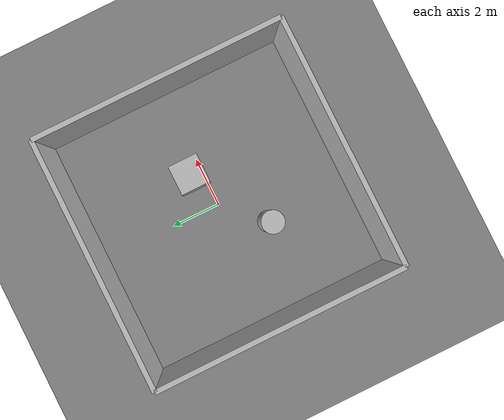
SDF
<?xml version="1.0" ?>
<sdf version="1.9">
  <world name="indoor_world">
    <gravity>0 0 -9.81</gravity>
    <physics name="1ms" type="gz::physics::dart::DART">
      <max_step_size>0.001</max_step_size>
      <real_time_factor>1.0</real_time_factor>
      <real_time_update_rate>1000</real_time_update_rate>
    </physics>
    <plugin filename="gz-sim-physics-system" name="gz::sim::systems::Physics"/>
    <plugin filename="gz-sim-user-commands-system" name="gz::sim::systems::UserCommands"/>
    <plugin filename="gz-sim-scene-broadcaster-system" name="gz::sim::systems::SceneBroadcaster"/>

    <light name="sun" type="directional">
      <cast_shadows>true</cast_shadows>
      <pose>0 0 10 0 0 0</pose>
      <diffuse>0.8 0.8 0.8 1</diffuse>
      <direction>-0.5 0.3 -1</direction>
    </light>
    <model name="ground_plane">
      <static>true</static>
      <link name="link">
        <collision name="collision">
          <geometry><plane><normal>0 0 1</normal><size>30 30</size></plane></geometry>
        </collision>
        <visual name="visual">
          <geometry><plane><normal>0 0 1</normal><size>30 30</size></plane></geometry>
          <material><ambient>0.35 0.35 0.35 1</ambient><diffuse>0.5 0.5 0.5 1</diffuse></material>
        </visual>
      </link>
    </model>

    <model name="north_wall">
      <static>true</static><pose>0 5 1 0 0 0</pose>
      <link name="link"><collision name="collision"><geometry><box><size>10 0.2 2</size></box></geometry></collision>
        <visual name="visual"><geometry><box><size>10 0.2 2</size></box></geometry></visual></link>
    </model>
    <model name="south_wall">
      <static>true</static><pose>0 -5 1 0 0 0</pose>
      <link name="link"><collision name="collision"><geometry><box><size>10 0.2 2</size></box></geometry></collision>
        <visual name="visual"><geometry><box><size>10 0.2 2</size></box></geometry></visual></link>
    </model>
    <model name="east_wall">
      <static>true</static><pose>5 0 1 0 0 0</pose>
      <link name="link"><collision name="collision"><geometry><box><size>0.2 10 2</size></box></geometry></collision>
        <visual name="visual"><geometry><box><size>0.2 10 2</size></box></geometry></visual></link>
    </model>
    <model name="west_wall">
      <static>true</static><pose>-5 0 1 0 0 0</pose>
      <link name="link"><collision name="collision"><geometry><box><size>0.2 10 2</size></box></geometry></collision>
        <visual name="visual"><geometry><box><size>0.2 10 2</size></box></geometry></visual></link>
    </model>
    <model name="obstacle_block">
      <static>true</static><pose>1.5 0.5 0.5 0 0 0</pose>
      <link name="link"><collision name="collision"><geometry><box><size>1.2 1.2 1</size></box></geometry></collision>
        <visual name="visual"><geometry><box><size>1.2 1.2 1</size></box></geometry></visual></link>
    </model>
    <model name="obstacle_column">
      <static>true</static><pose>-1.5 -1.5 0.75 0 0 0</pose>
      <link name="link"><collision name="collision"><geometry><cylinder><radius>0.45</radius><length>1.5</length></cylinder></geometry></collision>
        <visual name="visual"><geometry><cylinder><radius>0.45</radius><length>1.5</length></cylinder></geometry></visual></link>
    </model>
  </world>
</sdf>
